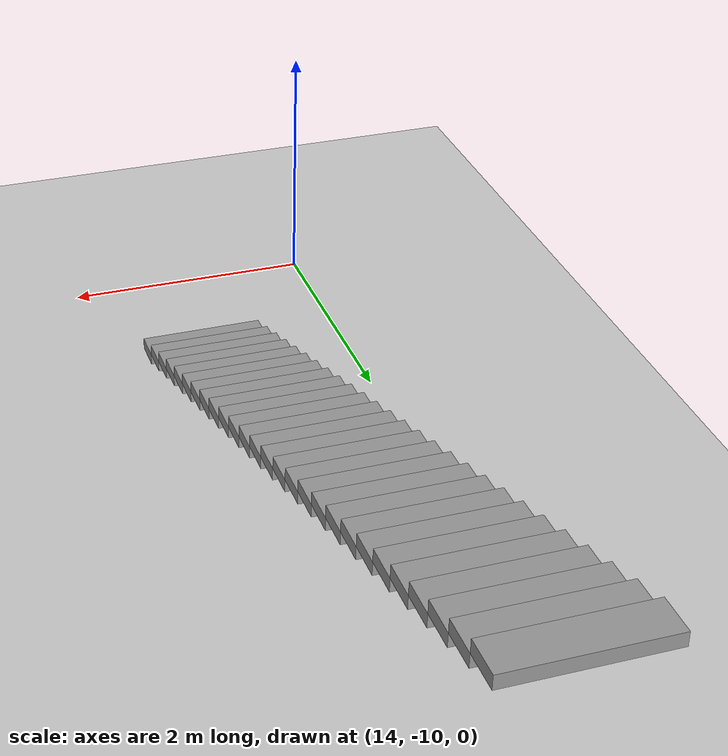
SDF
<sdf version="1.6">
 <world name="default">
  <model name="ground_plane">
   <static>1</static>
   <link name="link">
    <collision name="collision">
     <geometry><plane><normal>0 0 1</normal><size>100 100</size></plane></geometry>
     <surface><friction><ode><mu>100</mu><mu2>50</mu2></ode></friction></surface>
    </collision>
    <visual name="visual">
     <cast_shadows>0</cast_shadows>
     <geometry><plane><normal>0 0 1</normal><size>100 100</size></plane></geometry>
     <material>
      <script><uri>file://media/materials/scripts/gazebo.material</uri><name>Gazebo/Grey</name></script>
     </material>
    </visual>
   </link>
  </model>
  <model name="Erle Office">
   <link name="Stairs_7">
    <visual name="Stairs_7_Visual_2">
     <pose>4.82632 -3.5898 0.231482 0 0 -3.14159</pose>
     <geometry><box><size>1 0.257016 0.092593</size></box></geometry>
     <material>
      <script><uri>file://media/materials/scripts/gazebo.material</uri><name>Gazebo/Grey</name></script>
      <ambient>1 1 1 1</ambient>
      <diffuse>0.7 0.7 0.7 1</diffuse>
      <specular>0.01 0.01 0.01 1</specular>
      <emissive>0 0 0 1</emissive>
     </material>
    </visual>
    <visual name="Stairs_7_Visual_0">
     <pose>4.82632 -4.10383 0.046296 0 0 -3.14159</pose>
     <geometry><box><size>1 0.257016 0.092593</size></box></geometry>
     <material>
      <script><uri>file://media/materials/scripts/gazebo.material</uri><name>Gazebo/Grey</name></script>
      <ambient>1 1 1 1</ambient>
      <diffuse>0.7 0.7 0.7 1</diffuse>
      <specular>0.01 0.01 0.01 1</specular>
      <emissive>0 0 0 1</emissive>
     </material>
    </visual>
    <visual name="Stairs_7_Visual_1">
     <pose>4.82632 -3.84681 0.138889 0 0 -3.14159</pose>
     <geometry><box><size>1 0.257016 0.092593</size></box></geometry>
     <material>
      <script><uri>file://media/materials/scripts/gazebo.material</uri><name>Gazebo/Grey</name></script>
      <ambient>1 1 1 1</ambient>
      <diffuse>0.7 0.7 0.7 1</diffuse>
      <specular>0.01 0.01 0.01 1</specular>
      <emissive>0 0 0 1</emissive>
     </material>
    </visual>
    <visual name="Stairs_7_Visual_3">
     <pose>4.82632 -3.33278 0.324074 0 0 -3.14159</pose>
     <geometry><box><size>1 0.257016 0.092593</size></box></geometry>
     <material>
      <script><uri>file://media/materials/scripts/gazebo.material</uri><name>Gazebo/Grey</name></script>
      <ambient>1 1 1 1</ambient>
      <diffuse>0.7 0.7 0.7 1</diffuse>
      <specular>0.01 0.01 0.01 1</specular>
      <emissive>0 0 0 1</emissive>
     </material>
    </visual>
    <visual name="Stairs_7_Visual_4">
     <pose>4.82632 -3.07577 0.416667 0 0 -3.14159</pose>
     <geometry><box><size>1 0.257016 0.092593</size></box></geometry>
     <material>
      <script><uri>file://media/materials/scripts/gazebo.material</uri><name>Gazebo/Grey</name></script>
      <ambient>1 1 1 1</ambient>
      <diffuse>0.7 0.7 0.7 1</diffuse>
      <specular>0.01 0.01 0.01 1</specular>
      <emissive>0 0 0 1</emissive>
     </material>
    </visual>
    <visual name="Stairs_7_Visual_5">
     <pose>4.82632 -2.81875 0.509259 0 0 -3.14159</pose>
     <geometry><box><size>1 0.257016 0.092593</size></box></geometry>
     <material>
      <script><uri>file://media/materials/scripts/gazebo.material</uri><name>Gazebo/Grey</name></script>
      <ambient>1 1 1 1</ambient>
      <diffuse>0.7 0.7 0.7 1</diffuse>
      <specular>0.01 0.01 0.01 1</specular>
      <emissive>0 0 0 1</emissive>
     </material>
    </visual>
    <visual name="Stairs_7_Visual_6">
     <pose>4.82632 -2.56174 0.601852 0 0 -3.14159</pose>
     <geometry><box><size>1 0.257016 0.092593</size></box></geometry>
     <material>
      <script><uri>file://media/materials/scripts/gazebo.material</uri><name>Gazebo/Grey</name></script>
      <ambient>1 1 1 1</ambient>
      <diffuse>0.7 0.7 0.7 1</diffuse>
      <specular>0.01 0.01 0.01 1</specular>
      <emissive>0 0 0 1</emissive>
     </material>
    </visual>
    <visual name="Stairs_7_Visual_7">
     <pose>4.82632 -2.30472 0.694444 0 0 -3.14159</pose>
     <geometry><box><size>1 0.257016 0.092593</size></box></geometry>
     <material>
      <script><uri>file://media/materials/scripts/gazebo.material</uri><name>Gazebo/Grey</name></script>
      <ambient>1 1 1 1</ambient>
      <diffuse>0.7 0.7 0.7 1</diffuse>
      <specular>0.01 0.01 0.01 1</specular>
      <emissive>0 0 0 1</emissive>
     </material>
    </visual>
    <visual name="Stairs_7_Visual_8">
     <pose>4.82632 -2.04771 0.787037 0 0 -3.14159</pose>
     <geometry><box><size>1 0.257016 0.092593</size></box></geometry>
     <material>
      <script><uri>file://media/materials/scripts/gazebo.material</uri><name>Gazebo/Grey</name></script>
      <ambient>1 1 1 1</ambient>
      <diffuse>0.7 0.7 0.7 1</diffuse>
      <specular>0.01 0.01 0.01 1</specular>
      <emissive>0 0 0 1</emissive>
     </material>
    </visual>
    <visual name="Stairs_7_Visual_9">
     <pose>4.82632 -1.79069 0.87963 0 0 -3.14159</pose>
     <geometry><box><size>1 0.257016 0.092593</size></box></geometry>
     <material>
      <script><uri>file://media/materials/scripts/gazebo.material</uri><name>Gazebo/Grey</name></script>
      <ambient>1 1 1 1</ambient>
      <diffuse>0.7 0.7 0.7 1</diffuse>
      <specular>0.01 0.01 0.01 1</specular>
      <emissive>0 0 0 1</emissive>
     </material>
    </visual>
    <visual name="Stairs_7_Visual_10">
     <pose>4.82632 -1.53367 0.972222 0 0 -3.14159</pose>
     <geometry><box><size>1 0.257016 0.092593</size></box></geometry>
     <material>
      <script><uri>file://media/materials/scripts/gazebo.material</uri><name>Gazebo/Grey</name></script>
      <ambient>1 1 1 1</ambient>
      <diffuse>0.7 0.7 0.7 1</diffuse>
      <specular>0.01 0.01 0.01 1</specular>
      <emissive>0 0 0 1</emissive>
     </material>
    </visual>
    <visual name="Stairs_7_Visual_11">
     <pose>4.82632 -1.27666 1.06482 0 0 -3.14159</pose>
     <geometry><box><size>1 0.257016 0.092593</size></box></geometry>
     <material>
      <script><uri>file://media/materials/scripts/gazebo.material</uri><name>Gazebo/Grey</name></script>
      <ambient>1 1 1 1</ambient>
      <diffuse>0.7 0.7 0.7 1</diffuse>
      <specular>0.01 0.01 0.01 1</specular>
      <emissive>0 0 0 1</emissive>
     </material>
    </visual>
    <visual name="Stairs_7_Visual_12">
     <pose>4.82632 -1.01964 1.15741 0 0 -3.14159</pose>
     <geometry><box><size>1 0.257016 0.092593</size></box></geometry>
     <material>
      <script><uri>file://media/materials/scripts/gazebo.material</uri><name>Gazebo/Grey</name></script>
      <ambient>1 1 1 1</ambient>
      <diffuse>0.7 0.7 0.7 1</diffuse>
      <specular>0.01 0.01 0.01 1</specular>
      <emissive>0 0 0 1</emissive>
     </material>
    </visual>
    <visual name="Stairs_7_Visual_13">
     <pose>4.82632 -0.762627 1.25 0 0 -3.14159</pose>
     <geometry><box><size>1 0.257016 0.092593</size></box></geometry>
     <material>
      <script><uri>file://media/materials/scripts/gazebo.material</uri><name>Gazebo/Grey</name></script>
      <ambient>1 1 1 1</ambient>
      <diffuse>0.7 0.7 0.7 1</diffuse>
      <specular>0.01 0.01 0.01 1</specular>
      <emissive>0 0 0 1</emissive>
     </material>
    </visual>
    <visual name="Stairs_7_Visual_14">
     <pose>4.82632 -0.505611 1.34259 0 0 -3.14159</pose>
     <geometry><box><size>1 0.257016 0.092593</size></box></geometry>
     <material>
      <script><uri>file://media/materials/scripts/gazebo.material</uri><name>Gazebo/Grey</name></script>
      <ambient>1 1 1 1</ambient>
      <diffuse>0.7 0.7 0.7 1</diffuse>
      <specular>0.01 0.01 0.01 1</specular>
      <emissive>0 0 0 1</emissive>
     </material>
    </visual>
    <visual name="Stairs_7_Visual_15">
     <pose>4.82632 -0.248596 1.43518 0 0 -3.14159</pose>
     <geometry><box><size>1 0.257016 0.092593</size></box></geometry>
     <material>
      <script><uri>file://media/materials/scripts/gazebo.material</uri><name>Gazebo/Grey</name></script>
      <ambient>1 1 1 1</ambient>
      <diffuse>0.7 0.7 0.7 1</diffuse>
      <specular>0.01 0.01 0.01 1</specular>
      <emissive>0 0 0 1</emissive>
     </material>
    </visual>
    <visual name="Stairs_7_Visual_16">
     <pose>4.82632 0.00842 1.52778 0 0 -3.14159</pose>
     <geometry><box><size>1 0.257016 0.092593</size></box></geometry>
     <material>
      <script><uri>file://media/materials/scripts/gazebo.material</uri><name>Gazebo/Grey</name></script>
      <ambient>1 1 1 1</ambient>
      <diffuse>0.7 0.7 0.7 1</diffuse>
      <specular>0.01 0.01 0.01 1</specular>
      <emissive>0 0 0 1</emissive>
     </material>
    </visual>
    <visual name="Stairs_7_Visual_17">
     <pose>4.82632 0.265435 1.62037 0 0 -3.14159</pose>
     <geometry><box><size>1 0.257016 0.092593</size></box></geometry>
     <material>
      <script><uri>file://media/materials/scripts/gazebo.material</uri><name>Gazebo/Grey</name></script>
      <ambient>1 1 1 1</ambient>
      <diffuse>0.7 0.7 0.7 1</diffuse>
      <specular>0.01 0.01 0.01 1</specular>
      <emissive>0 0 0 1</emissive>
     </material>
    </visual>
    <visual name="Stairs_7_Visual_18">
     <pose>4.82632 0.522451 1.71296 0 0 -3.14159</pose>
     <geometry><box><size>1 0.257016 0.092593</size></box></geometry>
     <material>
      <script><uri>file://media/materials/scripts/gazebo.material</uri><name>Gazebo/Grey</name></script>
      <ambient>1 1 1 1</ambient>
      <diffuse>0.7 0.7 0.7 1</diffuse>
      <specular>0.01 0.01 0.01 1</specular>
      <emissive>0 0 0 1</emissive>
     </material>
    </visual>
    <visual name="Stairs_7_Visual_19">
     <pose>4.82632 0.779467 1.80556 0 0 -3.14159</pose>
     <geometry><box><size>1 0.257016 0.092593</size></box></geometry>
     <material>
      <script><uri>file://media/materials/scripts/gazebo.material</uri><name>Gazebo/Grey</name></script>
      <ambient>1 1 1 1</ambient>
      <diffuse>0.7 0.7 0.7 1</diffuse>
      <specular>0.01 0.01 0.01 1</specular>
      <emissive>0 0 0 1</emissive>
     </material>
    </visual>
    <visual name="Stairs_7_Visual_20">
     <pose>4.82632 1.03648 1.89815 0 0 -3.14159</pose>
     <geometry><box><size>1 0.257016 0.092593</size></box></geometry>
     <material>
      <script><uri>file://media/materials/scripts/gazebo.material</uri><name>Gazebo/Grey</name></script>
      <ambient>1 1 1 1</ambient>
      <diffuse>0.7 0.7 0.7 1</diffuse>
      <specular>0.01 0.01 0.01 1</specular>
      <emissive>0 0 0 1</emissive>
     </material>
    </visual>
    <visual name="Stairs_7_Visual_21">
     <pose>4.82632 1.2935 1.99074 0 0 -3.14159</pose>
     <geometry><box><size>1 0.257016 0.092593</size></box></geometry>
     <material>
      <script><uri>file://media/materials/scripts/gazebo.material</uri><name>Gazebo/Grey</name></script>
      <ambient>1 1 1 1</ambient>
      <diffuse>0.7 0.7 0.7 1</diffuse>
      <specular>0.01 0.01 0.01 1</specular>
      <emissive>0 0 0 1</emissive>
     </material>
    </visual>
    <visual name="Stairs_7_Visual_22">
     <pose>4.82632 1.55051 2.08333 0 0 -3.14159</pose>
     <geometry><box><size>1 0.257016 0.092593</size></box></geometry>
     <material>
      <script><uri>file://media/materials/scripts/gazebo.material</uri><name>Gazebo/Grey</name></script>
      <ambient>1 1 1 1</ambient>
      <diffuse>0.7 0.7 0.7 1</diffuse>
      <specular>0.01 0.01 0.01 1</specular>
      <emissive>0 0 0 1</emissive>
     </material>
    </visual>
    <visual name="Stairs_7_Visual_23">
     <pose>4.82632 1.80753 2.17593 0 0 -3.14159</pose>
     <geometry><box><size>1 0.257016 0.092593</size></box></geometry>
     <material>
      <script><uri>file://media/materials/scripts/gazebo.material</uri><name>Gazebo/Grey</name></script>
      <ambient>1 1 1 1</ambient>
      <diffuse>0.7 0.7 0.7 1</diffuse>
      <specular>0.01 0.01 0.01 1</specular>
      <emissive>0 0 0 1</emissive>
     </material>
    </visual>
    <visual name="Stairs_7_Visual_24">
     <pose>4.82632 2.06454 2.26852 0 0 -3.14159</pose>
     <geometry><box><size>1 0.257016 0.092593</size></box></geometry>
     <material>
      <script><uri>file://media/materials/scripts/gazebo.material</uri><name>Gazebo/Grey</name></script>
      <ambient>1 1 1 1</ambient>
      <diffuse>0.7 0.7 0.7 1</diffuse>
      <specular>0.01 0.01 0.01 1</specular>
      <emissive>0 0 0 1</emissive>
     </material>
    </visual>
    <visual name="Stairs_7_Visual_25">
     <pose>4.82632 2.32156 2.36111 0 0 -3.14159</pose>
     <geometry><box><size>1 0.257016 0.092593</size></box></geometry>
     <material>
      <script><uri>file://media/materials/scripts/gazebo.material</uri><name>Gazebo/Grey</name></script>
      <ambient>1 1 1 1</ambient>
      <diffuse>0.7 0.7 0.7 1</diffuse>
      <specular>0.01 0.01 0.01 1</specular>
      <emissive>0 0 0 1</emissive>
     </material>
    </visual>
    <visual name="Stairs_7_Visual_26">
     <pose>4.82632 2.57858 2.4537 0 0 -3.14159</pose>
     <geometry><box><size>1 0.257016 0.092593</size></box></geometry>
     <material>
      <script><uri>file://media/materials/scripts/gazebo.material</uri><name>Gazebo/Grey</name></script>
      <ambient>1 1 1 1</ambient>
      <diffuse>0.7 0.7 0.7 1</diffuse>
      <specular>0.01 0.01 0.01 1</specular>
      <emissive>0 0 0 1</emissive>
     </material>
    </visual>
    <collision name="Stairs_7_Collision_0">
     <pose>4.82632 -4.10383 0.046296 0 0 -3.14159</pose>
     <geometry><box><size>1 0.257016 0.092593</size></box></geometry>
     <surface>
      <friction>
       <ode><mu>1</mu><mu2>1</mu2><fdir1>0 0 0</fdir1><slip1>0</slip1><slip2>0</slip2></ode>
       <torsional>
        <coefficient>1</coefficient>
        <patch_radius>0</patch_radius>
        <surface_radius>0</surface_radius>
        <use_patch_radius>1</use_patch_radius>
        <ode><slip>0</slip></ode>
       </torsional>
      </friction>
      <bounce><restitution_coefficient>0</restitution_coefficient><threshold>1e+06</threshold></bounce>
      <contact>
       <collide_without_contact>0</collide_without_contact>
       <collide_without_contact_bitmask>1</collide_without_contact_bitmask>
       <collide_bitmask>1</collide_bitmask>
       <ode>
        <soft_cfm>0</soft_cfm>
        <soft_erp>0.2</soft_erp>
        <kp>1e+13</kp>
        <kd>1</kd>
        <max_vel>0.01</max_vel>
        <min_depth>0</min_depth>
       </ode>
       <bullet>
        <split_impulse>1</split_impulse>
        <split_impulse_penetration_threshold>-0.01</split_impulse_penetration_threshold>
        <soft_cfm>0</soft_cfm>
        <soft_erp>0.2</soft_erp>
        <kp>1e+13</kp>
        <kd>1</kd>
       </bullet>
      </contact>
     </surface>
    </collision>
    <collision name="Stairs_7_Collision_1">
     <pose>4.82632 -3.84681 0.138889 0 0 -3.14159</pose>
     <geometry><box><size>1 0.257016 0.092593</size></box></geometry>
     <surface>
      <friction>
       <ode><mu>1</mu><mu2>1</mu2><fdir1>0 0 0</fdir1><slip1>0</slip1><slip2>0</slip2></ode>
       <torsional>
        <coefficient>1</coefficient>
        <patch_radius>0</patch_radius>
        <surface_radius>0</surface_radius>
        <use_patch_radius>1</use_patch_radius>
        <ode><slip>0</slip></ode>
       </torsional>
      </friction>
      <bounce><restitution_coefficient>0</restitution_coefficient><threshold>1e+06</threshold></bounce>
      <contact>
       <collide_without_contact>0</collide_without_contact>
       <collide_without_contact_bitmask>1</collide_without_contact_bitmask>
       <collide_bitmask>1</collide_bitmask>
       <ode>
        <soft_cfm>0</soft_cfm>
        <soft_erp>0.2</soft_erp>
        <kp>1e+13</kp>
        <kd>1</kd>
        <max_vel>0.01</max_vel>
        <min_depth>0</min_depth>
       </ode>
       <bullet>
        <split_impulse>1</split_impulse>
        <split_impulse_penetration_threshold>-0.01</split_impulse_penetration_threshold>
        <soft_cfm>0</soft_cfm>
        <soft_erp>0.2</soft_erp>
        <kp>1e+13</kp>
        <kd>1</kd>
       </bullet>
      </contact>
     </surface>
    </collision>
    <collision name="Stairs_7_Collision_3">
     <pose>4.82632 -3.33278 0.324074 0 0 -3.14159</pose>
     <geometry><box><size>1 0.257016 0.092593</size></box></geometry>
     <surface>
      <friction>
       <ode><mu>1</mu><mu2>1</mu2><fdir1>0 0 0</fdir1><slip1>0</slip1><slip2>0</slip2></ode>
       <torsional>
        <coefficient>1</coefficient>
        <patch_radius>0</patch_radius>
        <surface_radius>0</surface_radius>
        <use_patch_radius>1</use_patch_radius>
        <ode><slip>0</slip></ode>
       </torsional>
      </friction>
      <bounce><restitution_coefficient>0</restitution_coefficient><threshold>1e+06</threshold></bounce>
      <contact>
       <collide_without_contact>0</collide_without_contact>
       <collide_without_contact_bitmask>1</collide_without_contact_bitmask>
       <collide_bitmask>1</collide_bitmask>
       <ode>
        <soft_cfm>0</soft_cfm>
        <soft_erp>0.2</soft_erp>
        <kp>1e+13</kp>
        <kd>1</kd>
        <max_vel>0.01</max_vel>
        <min_depth>0</min_depth>
       </ode>
       <bullet>
        <split_impulse>1</split_impulse>
        <split_impulse_penetration_threshold>-0.01</split_impulse_penetration_threshold>
        <soft_cfm>0</soft_cfm>
        <soft_erp>0.2</soft_erp>
        <kp>1e+13</kp>
        <kd>1</kd>
       </bullet>
      </contact>
     </surface>
    </collision>
    <collision name="Stairs_7_Collision_2">
     <pose>4.82632 -3.5898 0.231482 0 0 -3.14159</pose>
     <geometry><box><size>1 0.257016 0.092593</size></box></geometry>
     <surface>
      <friction>
       <ode><mu>1</mu><mu2>1</mu2><fdir1>0 0 0</fdir1><slip1>0</slip1><slip2>0</slip2></ode>
       <torsional>
        <coefficient>1</coefficient>
        <patch_radius>0</patch_radius>
        <surface_radius>0</surface_radius>
        <use_patch_radius>1</use_patch_radius>
        <ode><slip>0</slip></ode>
       </torsional>
      </friction>
      <bounce><restitution_coefficient>0</restitution_coefficient><threshold>1e+06</threshold></bounce>
      <contact>
       <collide_without_contact>0</collide_without_contact>
       <collide_without_contact_bitmask>1</collide_without_contact_bitmask>
       <collide_bitmask>1</collide_bitmask>
       <ode>
        <soft_cfm>0</soft_cfm>
        <soft_erp>0.2</soft_erp>
        <kp>1e+13</kp>
        <kd>1</kd>
        <max_vel>0.01</max_vel>
        <min_depth>0</min_depth>
       </ode>
       <bullet>
        <split_impulse>1</split_impulse>
        <split_impulse_penetration_threshold>-0.01</split_impulse_penetration_threshold>
        <soft_cfm>0</soft_cfm>
        <soft_erp>0.2</soft_erp>
        <kp>1e+13</kp>
        <kd>1</kd>
       </bullet>
      </contact>
     </surface>
    </collision>
    <collision name="Stairs_7_Collision_4">
     <pose>4.82632 -3.07577 0.416667 0 0 -3.14159</pose>
     <geometry><box><size>1 0.257016 0.092593</size></box></geometry>
     <surface>
      <friction>
       <ode><mu>1</mu><mu2>1</mu2><fdir1>0 0 0</fdir1><slip1>0</slip1><slip2>0</slip2></ode>
       <torsional>
        <coefficient>1</coefficient>
        <patch_radius>0</patch_radius>
        <surface_radius>0</surface_radius>
        <use_patch_radius>1</use_patch_radius>
        <ode><slip>0</slip></ode>
       </torsional>
      </friction>
      <bounce><restitution_coefficient>0</restitution_coefficient><threshold>1e+06</threshold></bounce>
      <contact>
       <collide_without_contact>0</collide_without_contact>
       <collide_without_contact_bitmask>1</collide_without_contact_bitmask>
       <collide_bitmask>1</collide_bitmask>
       <ode>
        <soft_cfm>0</soft_cfm>
        <soft_erp>0.2</soft_erp>
        <kp>1e+13</kp>
        <kd>1</kd>
        <max_vel>0.01</max_vel>
        <min_depth>0</min_depth>
       </ode>
       <bullet>
        <split_impulse>1</split_impulse>
        <split_impulse_penetration_threshold>-0.01</split_impulse_penetration_threshold>
        <soft_cfm>0</soft_cfm>
        <soft_erp>0.2</soft_erp>
        <kp>1e+13</kp>
        <kd>1</kd>
       </bullet>
      </contact>
     </surface>
    </collision>
    <collision name="Stairs_7_Collision_5">
     <pose>4.82632 -2.81875 0.509259 0 0 -3.14159</pose>
     <geometry><box><size>1 0.257016 0.092593</size></box></geometry>
     <surface>
      <friction>
       <ode><mu>1</mu><mu2>1</mu2><fdir1>0 0 0</fdir1><slip1>0</slip1><slip2>0</slip2></ode>
       <torsional>
        <coefficient>1</coefficient>
        <patch_radius>0</patch_radius>
        <surface_radius>0</surface_radius>
        <use_patch_radius>1</use_patch_radius>
        <ode><slip>0</slip></ode>
       </torsional>
      </friction>
      <bounce><restitution_coefficient>0</restitution_coefficient><threshold>1e+06</threshold></bounce>
      <contact>
       <collide_without_contact>0</collide_without_contact>
       <collide_without_contact_bitmask>1</collide_without_contact_bitmask>
       <collide_bitmask>1</collide_bitmask>
       <ode>
        <soft_cfm>0</soft_cfm>
        <soft_erp>0.2</soft_erp>
        <kp>1e+13</kp>
        <kd>1</kd>
        <max_vel>0.01</max_vel>
        <min_depth>0</min_depth>
       </ode>
       <bullet>
        <split_impulse>1</split_impulse>
        <split_impulse_penetration_threshold>-0.01</split_impulse_penetration_threshold>
        <soft_cfm>0</soft_cfm>
        <soft_erp>0.2</soft_erp>
        <kp>1e+13</kp>
        <kd>1</kd>
       </bullet>
      </contact>
     </surface>
    </collision>
    <collision name="Stairs_7_Collision_6">
     <pose>4.82632 -2.56174 0.601852 0 0 -3.14159</pose>
     <geometry><box><size>1 0.257016 0.092593</size></box></geometry>
     <surface>
      <friction>
       <ode><mu>1</mu><mu2>1</mu2><fdir1>0 0 0</fdir1><slip1>0</slip1><slip2>0</slip2></ode>
       <torsional>
        <coefficient>1</coefficient>
        <patch_radius>0</patch_radius>
        <surface_radius>0</surface_radius>
        <use_patch_radius>1</use_patch_radius>
        <ode><slip>0</slip></ode>
       </torsional>
      </friction>
      <bounce><restitution_coefficient>0</restitution_coefficient><threshold>1e+06</threshold></bounce>
      <contact>
       <collide_without_contact>0</collide_without_contact>
       <collide_without_contact_bitmask>1</collide_without_contact_bitmask>
       <collide_bitmask>1</collide_bitmask>
       <ode>
        <soft_cfm>0</soft_cfm>
        <soft_erp>0.2</soft_erp>
        <kp>1e+13</kp>
        <kd>1</kd>
        <max_vel>0.01</max_vel>
        <min_depth>0</min_depth>
       </ode>
       <bullet>
        <split_impulse>1</split_impulse>
        <split_impulse_penetration_threshold>-0.01</split_impulse_penetration_threshold>
        <soft_cfm>0</soft_cfm>
        <soft_erp>0.2</soft_erp>
        <kp>1e+13</kp>
        <kd>1</kd>
       </bullet>
      </contact>
     </surface>
    </collision>
    <collision name="Stairs_7_Collision_9">
     <pose>4.82632 -1.79069 0.87963 0 0 -3.14159</pose>
     <geometry><box><size>1 0.257016 0.092593</size></box></geometry>
     <surface>
      <friction>
       <ode><mu>1</mu><mu2>1</mu2><fdir1>0 0 0</fdir1><slip1>0</slip1><slip2>0</slip2></ode>
       <torsional>
        <coefficient>1</coefficient>
        <patch_radius>0</patch_radius>
        <surface_radius>0</surface_radius>
        <use_patch_radius>1</use_patch_radius>
        <ode><slip>0</slip></ode>
       </torsional>
      </friction>
      <bounce><restitution_coefficient>0</restitution_coefficient><threshold>1e+06</threshold></bounce>
      <contact>
       <collide_without_contact>0</collide_without_contact>
       <collide_without_contact_bitmask>1</collide_without_contact_bitmask>
       <collide_bitmask>1</collide_bitmask>
       <ode>
        <soft_cfm>0</soft_cfm>
        <soft_erp>0.2</soft_erp>
        <kp>1e+13</kp>
        <kd>1</kd>
        <max_vel>0.01</max_vel>
        <min_depth>0</min_depth>
       </ode>
       <bullet>
        <split_impulse>1</split_impulse>
        <split_impulse_penetration_threshold>-0.01</split_impulse_penetration_threshold>
        <soft_cfm>0</soft_cfm>
        <soft_erp>0.2</soft_erp>
        <kp>1e+13</kp>
        <kd>1</kd>
       </bullet>
      </contact>
     </surface>
    </collision>
    <collision name="Stairs_7_Collision_7">
     <pose>4.82632 -2.30472 0.694444 0 0 -3.14159</pose>
     <geometry><box><size>1 0.257016 0.092593</size></box></geometry>
     <surface>
      <friction>
       <ode><mu>1</mu><mu2>1</mu2><fdir1>0 0 0</fdir1><slip1>0</slip1><slip2>0</slip2></ode>
       <torsional>
        <coefficient>1</coefficient>
        <patch_radius>0</patch_radius>
        <surface_radius>0</surface_radius>
        <use_patch_radius>1</use_patch_radius>
        <ode><slip>0</slip></ode>
       </torsional>
      </friction>
      <bounce><restitution_coefficient>0</restitution_coefficient><threshold>1e+06</threshold></bounce>
      <contact>
       <collide_without_contact>0</collide_without_contact>
       <collide_without_contact_bitmask>1</collide_without_contact_bitmask>
       <collide_bitmask>1</collide_bitmask>
       <ode>
        <soft_cfm>0</soft_cfm>
        <soft_erp>0.2</soft_erp>
        <kp>1e+13</kp>
        <kd>1</kd>
        <max_vel>0.01</max_vel>
        <min_depth>0</min_depth>
       </ode>
       <bullet>
        <split_impulse>1</split_impulse>
        <split_impulse_penetration_threshold>-0.01</split_impulse_penetration_threshold>
        <soft_cfm>0</soft_cfm>
        <soft_erp>0.2</soft_erp>
        <kp>1e+13</kp>
        <kd>1</kd>
       </bullet>
      </contact>
     </surface>
    </collision>
    <collision name="Stairs_7_Collision_10">
     <pose>4.82632 -1.53367 0.972222 0 0 -3.14159</pose>
     <geometry><box><size>1 0.257016 0.092593</size></box></geometry>
     <surface>
      <friction>
       <ode><mu>1</mu><mu2>1</mu2><fdir1>0 0 0</fdir1><slip1>0</slip1><slip2>0</slip2></ode>
       <torsional>
        <coefficient>1</coefficient>
        <patch_radius>0</patch_radius>
        <surface_radius>0</surface_radius>
        <use_patch_radius>1</use_patch_radius>
        <ode><slip>0</slip></ode>
       </torsional>
      </friction>
      <bounce><restitution_coefficient>0</restitution_coefficient><threshold>1e+06</threshold></bounce>
      <contact>
       <collide_without_contact>0</collide_without_contact>
       <collide_without_contact_bitmask>1</collide_without_contact_bitmask>
       <collide_bitmask>1</collide_bitmask>
       <ode>
        <soft_cfm>0</soft_cfm>
        <soft_erp>0.2</soft_erp>
        <kp>1e+13</kp>
        <kd>1</kd>
        <max_vel>0.01</max_vel>
        <min_depth>0</min_depth>
       </ode>
       <bullet>
        <split_impulse>1</split_impulse>
        <split_impulse_penetration_threshold>-0.01</split_impulse_penetration_threshold>
        <soft_cfm>0</soft_cfm>
        <soft_erp>0.2</soft_erp>
        <kp>1e+13</kp>
        <kd>1</kd>
       </bullet>
      </contact>
     </surface>
    </collision>
    <collision name="Stairs_7_Collision_8">
     <pose>4.82632 -2.04771 0.787037 0 0 -3.14159</pose>
     <geometry><box><size>1 0.257016 0.092593</size></box></geometry>
     <surface>
      <friction>
       <ode><mu>1</mu><mu2>1</mu2><fdir1>0 0 0</fdir1><slip1>0</slip1><slip2>0</slip2></ode>
       <torsional>
        <coefficient>1</coefficient>
        <patch_radius>0</patch_radius>
        <surface_radius>0</surface_radius>
        <use_patch_radius>1</use_patch_radius>
        <ode><slip>0</slip></ode>
       </torsional>
      </friction>
      <bounce><restitution_coefficient>0</restitution_coefficient><threshold>1e+06</threshold></bounce>
      <contact>
       <collide_without_contact>0</collide_without_contact>
       <collide_without_contact_bitmask>1</collide_without_contact_bitmask>
       <collide_bitmask>1</collide_bitmask>
       <ode>
        <soft_cfm>0</soft_cfm>
        <soft_erp>0.2</soft_erp>
        <kp>1e+13</kp>
        <kd>1</kd>
        <max_vel>0.01</max_vel>
        <min_depth>0</min_depth>
       </ode>
       <bullet>
        <split_impulse>1</split_impulse>
        <split_impulse_penetration_threshold>-0.01</split_impulse_penetration_threshold>
        <soft_cfm>0</soft_cfm>
        <soft_erp>0.2</soft_erp>
        <kp>1e+13</kp>
        <kd>1</kd>
       </bullet>
      </contact>
     </surface>
    </collision>
    <collision name="Stairs_7_Collision_11">
     <pose>4.82632 -1.27666 1.06482 0 0 -3.14159</pose>
     <geometry><box><size>1 0.257016 0.092593</size></box></geometry>
     <surface>
      <friction>
       <ode><mu>1</mu><mu2>1</mu2><fdir1>0 0 0</fdir1><slip1>0</slip1><slip2>0</slip2></ode>
       <torsional>
        <coefficient>1</coefficient>
        <patch_radius>0</patch_radius>
        <surface_radius>0</surface_radius>
        <use_patch_radius>1</use_patch_radius>
        <ode><slip>0</slip></ode>
       </torsional>
      </friction>
      <bounce><restitution_coefficient>0</restitution_coefficient><threshold>1e+06</threshold></bounce>
      <contact>
       <collide_without_contact>0</collide_without_contact>
       <collide_without_contact_bitmask>1</collide_without_contact_bitmask>
       <collide_bitmask>1</collide_bitmask>
       <ode>
        <soft_cfm>0</soft_cfm>
        <soft_erp>0.2</soft_erp>
        <kp>1e+13</kp>
        <kd>1</kd>
        <max_vel>0.01</max_vel>
        <min_depth>0</min_depth>
       </ode>
       <bullet>
        <split_impulse>1</split_impulse>
        <split_impulse_penetration_threshold>-0.01</split_impulse_penetration_threshold>
        <soft_cfm>0</soft_cfm>
        <soft_erp>0.2</soft_erp>
        <kp>1e+13</kp>
        <kd>1</kd>
       </bullet>
      </contact>
     </surface>
    </collision>
    <collision name="Stairs_7_Collision_12">
     <pose>4.82632 -1.01964 1.15741 0 0 -3.14159</pose>
     <geometry><box><size>1 0.257016 0.092593</size></box></geometry>
     <surface>
      <friction>
       <ode><mu>1</mu><mu2>1</mu2><fdir1>0 0 0</fdir1><slip1>0</slip1><slip2>0</slip2></ode>
       <torsional>
        <coefficient>1</coefficient>
        <patch_radius>0</patch_radius>
        <surface_radius>0</surface_radius>
        <use_patch_radius>1</use_patch_radius>
        <ode><slip>0</slip></ode>
       </torsional>
      </friction>
      <bounce><restitution_coefficient>0</restitution_coefficient><threshold>1e+06</threshold></bounce>
      <contact>
       <collide_without_contact>0</collide_without_contact>
       <collide_without_contact_bitmask>1</collide_without_contact_bitmask>
       <collide_bitmask>1</collide_bitmask>
       <ode>
        <soft_cfm>0</soft_cfm>
        <soft_erp>0.2</soft_erp>
        <kp>1e+13</kp>
        <kd>1</kd>
        <max_vel>0.01</max_vel>
        <min_depth>0</min_depth>
       </ode>
       <bullet>
        <split_impulse>1</split_impulse>
        <split_impulse_penetration_threshold>-0.01</split_impulse_penetration_threshold>
        <soft_cfm>0</soft_cfm>
        <soft_erp>0.2</soft_erp>
        <kp>1e+13</kp>
        <kd>1</kd>
       </bullet>
      </contact>
     </surface>
    </collision>
    <collision name="Stairs_7_Collision_13">
     <pose>4.82632 -0.762627 1.25 0 0 -3.14159</pose>
     <geometry><box><size>1 0.257016 0.092593</size></box></geometry>
     <surface>
      <friction>
       <ode><mu>1</mu><mu2>1</mu2><fdir1>0 0 0</fdir1><slip1>0</slip1><slip2>0</slip2></ode>
       <torsional>
        <coefficient>1</coefficient>
        <patch_radius>0</patch_radius>
        <surface_radius>0</surface_radius>
        <use_patch_radius>1</use_patch_radius>
        <ode><slip>0</slip></ode>
       </torsional>
      </friction>
      <bounce><restitution_coefficient>0</restitution_coefficient><threshold>1e+06</threshold></bounce>
      <contact>
       <collide_without_contact>0</collide_without_contact>
       <collide_without_contact_bitmask>1</collide_without_contact_bitmask>
       <collide_bitmask>1</collide_bitmask>
       <ode>
        <soft_cfm>0</soft_cfm>
        <soft_erp>0.2</soft_erp>
        <kp>1e+13</kp>
        <kd>1</kd>
        <max_vel>0.01</max_vel>
        <min_depth>0</min_depth>
       </ode>
       <bullet>
        <split_impulse>1</split_impulse>
        <split_impulse_penetration_threshold>-0.01</split_impulse_penetration_threshold>
        <soft_cfm>0</soft_cfm>
        <soft_erp>0.2</soft_erp>
        <kp>1e+13</kp>
        <kd>1</kd>
       </bullet>
      </contact>
     </surface>
    </collision>
    <collision name="Stairs_7_Collision_16">
     <pose>4.82632 0.00842 1.52778 0 0 -3.14159</pose>
     <geometry><box><size>1 0.257016 0.092593</size></box></geometry>
     <surface>
      <friction>
       <ode><mu>1</mu><mu2>1</mu2><fdir1>0 0 0</fdir1><slip1>0</slip1><slip2>0</slip2></ode>
       <torsional>
        <coefficient>1</coefficient>
        <patch_radius>0</patch_radius>
        <surface_radius>0</surface_radius>
        <use_patch_radius>1</use_patch_radius>
        <ode><slip>0</slip></ode>
       </torsional>
      </friction>
      <bounce><restitution_coefficient>0</restitution_coefficient><threshold>1e+06</threshold></bounce>
      <contact>
       <collide_without_contact>0</collide_without_contact>
       <collide_without_contact_bitmask>1</collide_without_contact_bitmask>
       <collide_bitmask>1</collide_bitmask>
       <ode>
        <soft_cfm>0</soft_cfm>
        <soft_erp>0.2</soft_erp>
        <kp>1e+13</kp>
        <kd>1</kd>
        <max_vel>0.01</max_vel>
        <min_depth>0</min_depth>
       </ode>
       <bullet>
        <split_impulse>1</split_impulse>
        <split_impulse_penetration_threshold>-0.01</split_impulse_penetration_threshold>
        <soft_cfm>0</soft_cfm>
        <soft_erp>0.2</soft_erp>
        <kp>1e+13</kp>
        <kd>1</kd>
       </bullet>
      </contact>
     </surface>
    </collision>
    <collision name="Stairs_7_Collision_14">
     <pose>4.82632 -0.505611 1.34259 0 0 -3.14159</pose>
     <geometry><box><size>1 0.257016 0.092593</size></box></geometry>
     <surface>
      <friction>
       <ode><mu>1</mu><mu2>1</mu2><fdir1>0 0 0</fdir1><slip1>0</slip1><slip2>0</slip2></ode>
       <torsional>
        <coefficient>1</coefficient>
        <patch_radius>0</patch_radius>
        <surface_radius>0</surface_radius>
        <use_patch_radius>1</use_patch_radius>
        <ode><slip>0</slip></ode>
       </torsional>
      </friction>
      <bounce><restitution_coefficient>0</restitution_coefficient><threshold>1e+06</threshold></bounce>
      <contact>
       <collide_without_contact>0</collide_without_contact>
       <collide_without_contact_bitmask>1</collide_without_contact_bitmask>
       <collide_bitmask>1</collide_bitmask>
       <ode>
        <soft_cfm>0</soft_cfm>
        <soft_erp>0.2</soft_erp>
        <kp>1e+13</kp>
        <kd>1</kd>
        <max_vel>0.01</max_vel>
        <min_depth>0</min_depth>
       </ode>
       <bullet>
        <split_impulse>1</split_impulse>
        <split_impulse_penetration_threshold>-0.01</split_impulse_penetration_threshold>
        <soft_cfm>0</soft_cfm>
        <soft_erp>0.2</soft_erp>
        <kp>1e+13</kp>
        <kd>1</kd>
       </bullet>
      </contact>
     </surface>
    </collision>
    <collision name="Stairs_7_Collision_15">
     <pose>4.82632 -0.248596 1.43518 0 0 -3.14159</pose>
     <geometry><box><size>1 0.257016 0.092593</size></box></geometry>
     <surface>
      <friction>
       <ode><mu>1</mu><mu2>1</mu2><fdir1>0 0 0</fdir1><slip1>0</slip1><slip2>0</slip2></ode>
       <torsional>
        <coefficient>1</coefficient>
        <patch_radius>0</patch_radius>
        <surface_radius>0</surface_radius>
        <use_patch_radius>1</use_patch_radius>
        <ode><slip>0</slip></ode>
       </torsional>
      </friction>
      <bounce><restitution_coefficient>0</restitution_coefficient><threshold>1e+06</threshold></bounce>
      <contact>
       <collide_without_contact>0</collide_without_contact>
       <collide_without_contact_bitmask>1</collide_without_contact_bitmask>
       <collide_bitmask>1</collide_bitmask>
       <ode>
        <soft_cfm>0</soft_cfm>
        <soft_erp>0.2</soft_erp>
        <kp>1e+13</kp>
        <kd>1</kd>
        <max_vel>0.01</max_vel>
        <min_depth>0</min_depth>
       </ode>
       <bullet>
        <split_impulse>1</split_impulse>
        <split_impulse_penetration_threshold>-0.01</split_impulse_penetration_threshold>
        <soft_cfm>0</soft_cfm>
        <soft_erp>0.2</soft_erp>
        <kp>1e+13</kp>
        <kd>1</kd>
       </bullet>
      </contact>
     </surface>
    </collision>
    <collision name="Stairs_7_Collision_19">
     <pose>4.82632 0.779467 1.80556 0 0 -3.14159</pose>
     <geometry><box><size>1 0.257016 0.092593</size></box></geometry>
     <surface>
      <friction>
       <ode><mu>1</mu><mu2>1</mu2><fdir1>0 0 0</fdir1><slip1>0</slip1><slip2>0</slip2></ode>
       <torsional>
        <coefficient>1</coefficient>
        <patch_radius>0</patch_radius>
        <surface_radius>0</surface_radius>
        <use_patch_radius>1</use_patch_radius>
        <ode><slip>0</slip></ode>
       </torsional>
      </friction>
      <bounce><restitution_coefficient>0</restitution_coefficient><threshold>1e+06</threshold></bounce>
      <contact>
       <collide_without_contact>0</collide_without_contact>
       <collide_without_contact_bitmask>1</collide_without_contact_bitmask>
       <collide_bitmask>1</collide_bitmask>
       <ode>
        <soft_cfm>0</soft_cfm>
        <soft_erp>0.2</soft_erp>
        <kp>1e+13</kp>
        <kd>1</kd>
        <max_vel>0.01</max_vel>
        <min_depth>0</min_depth>
       </ode>
       <bullet>
        <split_impulse>1</split_impulse>
        <split_impulse_penetration_threshold>-0.01</split_impulse_penetration_threshold>
        <soft_cfm>0</soft_cfm>
        <soft_erp>0.2</soft_erp>
        <kp>1e+13</kp>
        <kd>1</kd>
       </bullet>
      </contact>
     </surface>
    </collision>
    <collision name="Stairs_7_Collision_18">
     <pose>4.82632 0.522451 1.71296 0 0 -3.14159</pose>
     <geometry><box><size>1 0.257016 0.092593</size></box></geometry>
     <surface>
      <friction>
       <ode><mu>1</mu><mu2>1</mu2><fdir1>0 0 0</fdir1><slip1>0</slip1><slip2>0</slip2></ode>
       <torsional>
        <coefficient>1</coefficient>
        <patch_radius>0</patch_radius>
        <surface_radius>0</surface_radius>
        <use_patch_radius>1</use_patch_radius>
        <ode><slip>0</slip></ode>
       </torsional>
      </friction>
      <bounce><restitution_coefficient>0</restitution_coefficient><threshold>1e+06</threshold></bounce>
      <contact>
       <collide_without_contact>0</collide_without_contact>
       <collide_without_contact_bitmask>1</collide_without_contact_bitmask>
       <collide_bitmask>1</collide_bitmask>
       <ode>
        <soft_cfm>0</soft_cfm>
        <soft_erp>0.2</soft_erp>
        <kp>1e+13</kp>
        <kd>1</kd>
        <max_vel>0.01</max_vel>
        <min_depth>0</min_depth>
       </ode>
       <bullet>
        <split_impulse>1</split_impulse>
        <split_impulse_penetration_threshold>-0.01</split_impulse_penetration_threshold>
        <soft_cfm>0</soft_cfm>
        <soft_erp>0.2</soft_erp>
        <kp>1e+13</kp>
        <kd>1</kd>
       </bullet>
      </contact>
     </surface>
    </collision>
    <collision name="Stairs_7_Collision_17">
     <pose>4.82632 0.265435 1.62037 0 0 -3.14159</pose>
     <geometry><box><size>1 0.257016 0.092593</size></box></geometry>
     <surface>
      <friction>
       <ode><mu>1</mu><mu2>1</mu2><fdir1>0 0 0</fdir1><slip1>0</slip1><slip2>0</slip2></ode>
       <torsional>
        <coefficient>1</coefficient>
        <patch_radius>0</patch_radius>
        <surface_radius>0</surface_radius>
        <use_patch_radius>1</use_patch_radius>
        <ode><slip>0</slip></ode>
       </torsional>
      </friction>
      <bounce><restitution_coefficient>0</restitution_coefficient><threshold>1e+06</threshold></bounce>
      <contact>
       <collide_without_contact>0</collide_without_contact>
       <collide_without_contact_bitmask>1</collide_without_contact_bitmask>
       <collide_bitmask>1</collide_bitmask>
       <ode>
        <soft_cfm>0</soft_cfm>
        <soft_erp>0.2</soft_erp>
        <kp>1e+13</kp>
        <kd>1</kd>
        <max_vel>0.01</max_vel>
        <min_depth>0</min_depth>
       </ode>
       <bullet>
        <split_impulse>1</split_impulse>
        <split_impulse_penetration_threshold>-0.01</split_impulse_penetration_threshold>
        <soft_cfm>0</soft_cfm>
        <soft_erp>0.2</soft_erp>
        <kp>1e+13</kp>
        <kd>1</kd>
       </bullet>
      </contact>
     </surface>
    </collision>
    <collision name="Stairs_7_Collision_20">
     <pose>4.82632 1.03648 1.89815 0 0 -3.14159</pose>
     <geometry><box><size>1 0.257016 0.092593</size></box></geometry>
     <surface>
      <friction>
       <ode><mu>1</mu><mu2>1</mu2><fdir1>0 0 0</fdir1><slip1>0</slip1><slip2>0</slip2></ode>
       <torsional>
        <coefficient>1</coefficient>
        <patch_radius>0</patch_radius>
        <surface_radius>0</surface_radius>
        <use_patch_radius>1</use_patch_radius>
        <ode><slip>0</slip></ode>
       </torsional>
      </friction>
      <bounce><restitution_coefficient>0</restitution_coefficient><threshold>1e+06</threshold></bounce>
      <contact>
       <collide_without_contact>0</collide_without_contact>
       <collide_without_contact_bitmask>1</collide_without_contact_bitmask>
       <collide_bitmask>1</collide_bitmask>
       <ode>
        <soft_cfm>0</soft_cfm>
        <soft_erp>0.2</soft_erp>
        <kp>1e+13</kp>
        <kd>1</kd>
        <max_vel>0.01</max_vel>
        <min_depth>0</min_depth>
       </ode>
       <bullet>
        <split_impulse>1</split_impulse>
        <split_impulse_penetration_threshold>-0.01</split_impulse_penetration_threshold>
        <soft_cfm>0</soft_cfm>
        <soft_erp>0.2</soft_erp>
        <kp>1e+13</kp>
        <kd>1</kd>
       </bullet>
      </contact>
     </surface>
    </collision>
    <collision name="Stairs_7_Collision_23">
     <pose>4.82632 1.80753 2.17593 0 0 -3.14159</pose>
     <geometry><box><size>1 0.257016 0.092593</size></box></geometry>
     <surface>
      <friction>
       <ode><mu>1</mu><mu2>1</mu2><fdir1>0 0 0</fdir1><slip1>0</slip1><slip2>0</slip2></ode>
       <torsional>
        <coefficient>1</coefficient>
        <patch_radius>0</patch_radius>
        <surface_radius>0</surface_radius>
        <use_patch_radius>1</use_patch_radius>
        <ode><slip>0</slip></ode>
       </torsional>
      </friction>
      <bounce><restitution_coefficient>0</restitution_coefficient><threshold>1e+06</threshold></bounce>
      <contact>
       <collide_without_contact>0</collide_without_contact>
       <collide_without_contact_bitmask>1</collide_without_contact_bitmask>
       <collide_bitmask>1</collide_bitmask>
       <ode>
        <soft_cfm>0</soft_cfm>
        <soft_erp>0.2</soft_erp>
        <kp>1e+13</kp>
        <kd>1</kd>
        <max_vel>0.01</max_vel>
        <min_depth>0</min_depth>
       </ode>
       <bullet>
        <split_impulse>1</split_impulse>
        <split_impulse_penetration_threshold>-0.01</split_impulse_penetration_threshold>
        <soft_cfm>0</soft_cfm>
        <soft_erp>0.2</soft_erp>
        <kp>1e+13</kp>
        <kd>1</kd>
       </bullet>
      </contact>
     </surface>
    </collision>
    <collision name="Stairs_7_Collision_22">
     <pose>4.82632 1.55051 2.08333 0 0 -3.14159</pose>
     <geometry><box><size>1 0.257016 0.092593</size></box></geometry>
     <surface>
      <friction>
       <ode><mu>1</mu><mu2>1</mu2><fdir1>0 0 0</fdir1><slip1>0</slip1><slip2>0</slip2></ode>
       <torsional>
        <coefficient>1</coefficient>
        <patch_radius>0</patch_radius>
        <surface_radius>0</surface_radius>
        <use_patch_radius>1</use_patch_radius>
        <ode><slip>0</slip></ode>
       </torsional>
      </friction>
      <bounce><restitution_coefficient>0</restitution_coefficient><threshold>1e+06</threshold></bounce>
      <contact>
       <collide_without_contact>0</collide_without_contact>
       <collide_without_contact_bitmask>1</collide_without_contact_bitmask>
       <collide_bitmask>1</collide_bitmask>
       <ode>
        <soft_cfm>0</soft_cfm>
        <soft_erp>0.2</soft_erp>
        <kp>1e+13</kp>
        <kd>1</kd>
        <max_vel>0.01</max_vel>
        <min_depth>0</min_depth>
       </ode>
       <bullet>
        <split_impulse>1</split_impulse>
        <split_impulse_penetration_threshold>-0.01</split_impulse_penetration_threshold>
        <soft_cfm>0</soft_cfm>
        <soft_erp>0.2</soft_erp>
        <kp>1e+13</kp>
        <kd>1</kd>
       </bullet>
      </contact>
     </surface>
    </collision>
    <collision name="Stairs_7_Collision_21">
     <pose>4.82632 1.2935 1.99074 0 0 -3.14159</pose>
     <geometry><box><size>1 0.257016 0.092593</size></box></geometry>
     <surface>
      <friction>
       <ode><mu>1</mu><mu2>1</mu2><fdir1>0 0 0</fdir1><slip1>0</slip1><slip2>0</slip2></ode>
       <torsional>
        <coefficient>1</coefficient>
        <patch_radius>0</patch_radius>
        <surface_radius>0</surface_radius>
        <use_patch_radius>1</use_patch_radius>
        <ode><slip>0</slip></ode>
       </torsional>
      </friction>
      <bounce><restitution_coefficient>0</restitution_coefficient><threshold>1e+06</threshold></bounce>
      <contact>
       <collide_without_contact>0</collide_without_contact>
       <collide_without_contact_bitmask>1</collide_without_contact_bitmask>
       <collide_bitmask>1</collide_bitmask>
       <ode>
        <soft_cfm>0</soft_cfm>
        <soft_erp>0.2</soft_erp>
        <kp>1e+13</kp>
        <kd>1</kd>
        <max_vel>0.01</max_vel>
        <min_depth>0</min_depth>
       </ode>
       <bullet>
        <split_impulse>1</split_impulse>
        <split_impulse_penetration_threshold>-0.01</split_impulse_penetration_threshold>
        <soft_cfm>0</soft_cfm>
        <soft_erp>0.2</soft_erp>
        <kp>1e+13</kp>
        <kd>1</kd>
       </bullet>
      </contact>
     </surface>
    </collision>
    <collision name="Stairs_7_Collision_24">
     <pose>4.82632 2.06454 2.26852 0 0 -3.14159</pose>
     <geometry><box><size>1 0.257016 0.092593</size></box></geometry>
     <surface>
      <friction>
       <ode><mu>1</mu><mu2>1</mu2><fdir1>0 0 0</fdir1><slip1>0</slip1><slip2>0</slip2></ode>
       <torsional>
        <coefficient>1</coefficient>
        <patch_radius>0</patch_radius>
        <surface_radius>0</surface_radius>
        <use_patch_radius>1</use_patch_radius>
        <ode><slip>0</slip></ode>
       </torsional>
      </friction>
      <bounce><restitution_coefficient>0</restitution_coefficient><threshold>1e+06</threshold></bounce>
      <contact>
       <collide_without_contact>0</collide_without_contact>
       <collide_without_contact_bitmask>1</collide_without_contact_bitmask>
       <collide_bitmask>1</collide_bitmask>
       <ode>
        <soft_cfm>0</soft_cfm>
        <soft_erp>0.2</soft_erp>
        <kp>1e+13</kp>
        <kd>1</kd>
        <max_vel>0.01</max_vel>
        <min_depth>0</min_depth>
       </ode>
       <bullet>
        <split_impulse>1</split_impulse>
        <split_impulse_penetration_threshold>-0.01</split_impulse_penetration_threshold>
        <soft_cfm>0</soft_cfm>
        <soft_erp>0.2</soft_erp>
        <kp>1e+13</kp>
        <kd>1</kd>
       </bullet>
      </contact>
     </surface>
    </collision>
    <collision name="Stairs_7_Collision_25">
     <pose>4.82632 2.32156 2.36111 0 0 -3.14159</pose>
     <geometry><box><size>1 0.257016 0.092593</size></box></geometry>
     <surface>
      <friction>
       <ode><mu>1</mu><mu2>1</mu2><fdir1>0 0 0</fdir1><slip1>0</slip1><slip2>0</slip2></ode>
       <torsional>
        <coefficient>1</coefficient>
        <patch_radius>0</patch_radius>
        <surface_radius>0</surface_radius>
        <use_patch_radius>1</use_patch_radius>
        <ode><slip>0</slip></ode>
       </torsional>
      </friction>
      <bounce><restitution_coefficient>0</restitution_coefficient><threshold>1e+06</threshold></bounce>
      <contact>
       <collide_without_contact>0</collide_without_contact>
       <collide_without_contact_bitmask>1</collide_without_contact_bitmask>
       <collide_bitmask>1</collide_bitmask>
       <ode>
        <soft_cfm>0</soft_cfm>
        <soft_erp>0.2</soft_erp>
        <kp>1e+13</kp>
        <kd>1</kd>
        <max_vel>0.01</max_vel>
        <min_depth>0</min_depth>
       </ode>
       <bullet>
        <split_impulse>1</split_impulse>
        <split_impulse_penetration_threshold>-0.01</split_impulse_penetration_threshold>
        <soft_cfm>0</soft_cfm>
        <soft_erp>0.2</soft_erp>
        <kp>1e+13</kp>
        <kd>1</kd>
       </bullet>
      </contact>
     </surface>
    </collision>
    <collision name="Stairs_7_Collision_26">
     <pose>4.82632 2.57858 2.4537 0 0 -3.14159</pose>
     <geometry><box><size>1 0.257016 0.092593</size></box></geometry>
     <surface>
      <friction>
       <ode><mu>1</mu><mu2>1</mu2><fdir1>0 0 0</fdir1><slip1>0</slip1><slip2>0</slip2></ode>
       <torsional>
        <coefficient>1</coefficient>
        <patch_radius>0</patch_radius>
        <surface_radius>0</surface_radius>
        <use_patch_radius>1</use_patch_radius>
        <ode><slip>0</slip></ode>
       </torsional>
      </friction>
      <bounce><restitution_coefficient>0</restitution_coefficient><threshold>1e+06</threshold></bounce>
      <contact>
       <collide_without_contact>0</collide_without_contact>
       <collide_without_contact_bitmask>1</collide_without_contact_bitmask>
       <collide_bitmask>1</collide_bitmask>
       <ode>
        <soft_cfm>0</soft_cfm>
        <soft_erp>0.2</soft_erp>
        <kp>1e+13</kp>
        <kd>1</kd>
        <max_vel>0.01</max_vel>
        <min_depth>0</min_depth>
       </ode>
       <bullet>
        <split_impulse>1</split_impulse>
        <split_impulse_penetration_threshold>-0.01</split_impulse_penetration_threshold>
        <soft_cfm>0</soft_cfm>
        <soft_erp>0.2</soft_erp>
        <kp>1e+13</kp>
        <kd>1</kd>
       </bullet>
      </contact>
     </surface>
    </collision>
   </link>
   <static>1</static>
   <pose>10.3102 -4.80805 0 0 -0 0</pose>
  </model>
 </world>
</sdf>
